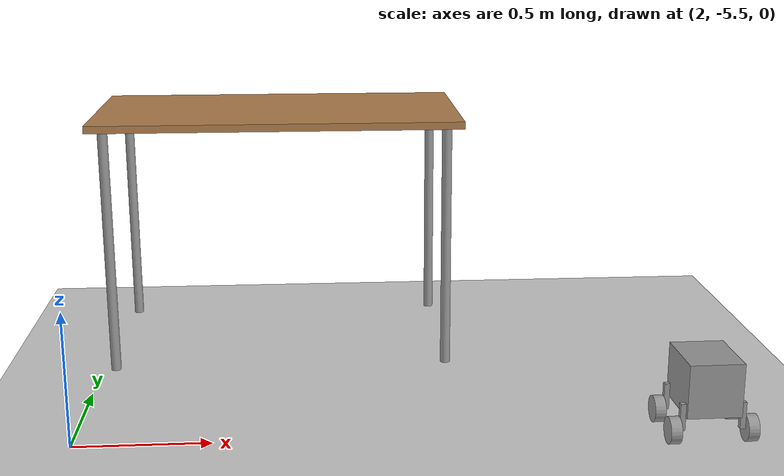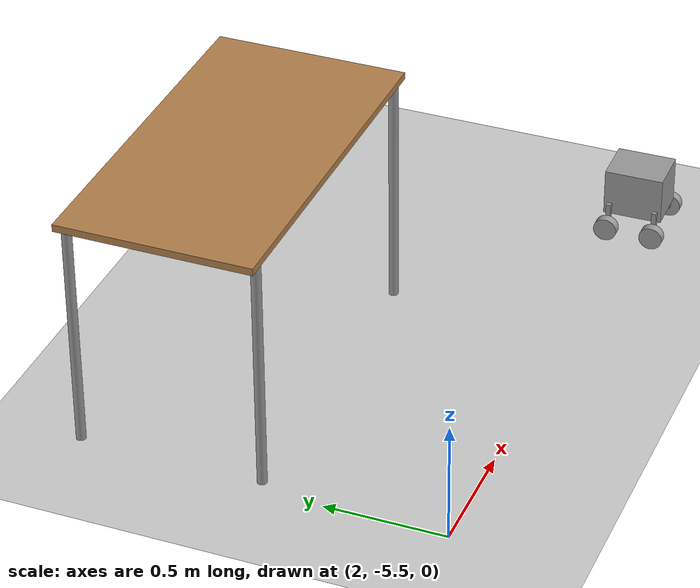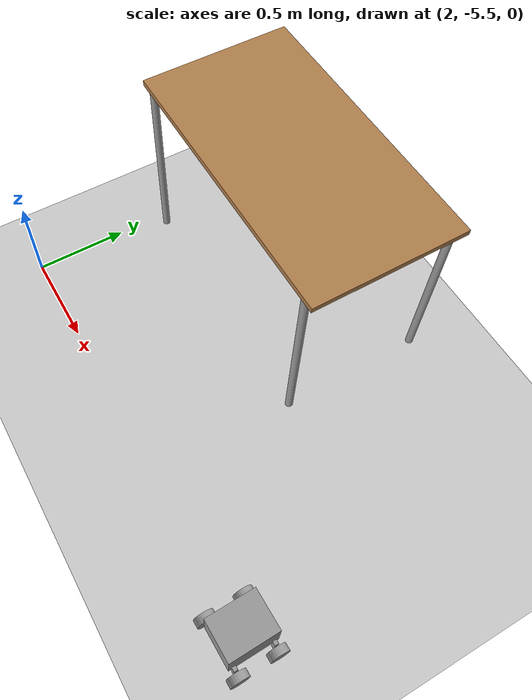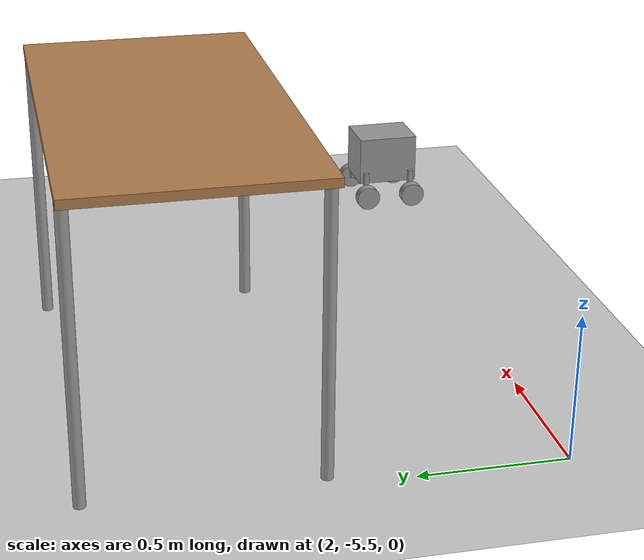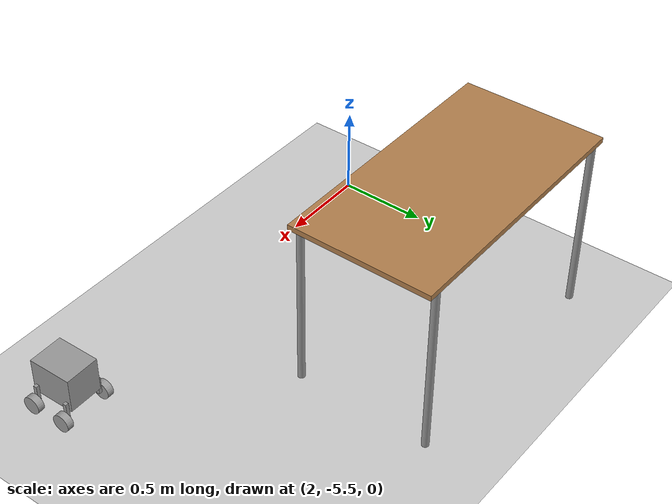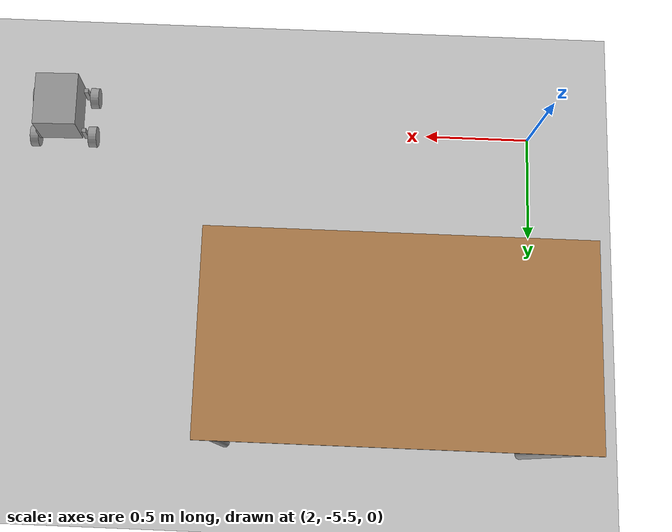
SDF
<sdf version="1.6">
 <world name="default">
  <model name="ground_plane">
   <static>1</static>
   <link name="link">
    <collision name="collision">
     <geometry><plane><normal>0 0 1</normal><size>100 100</size></plane></geometry>
     <surface><friction><ode><mu>100</mu><mu2>50</mu2></ode></friction></surface>
    </collision>
    <visual name="visual">
     <cast_shadows>0</cast_shadows>
     <geometry><plane><normal>0 0 1</normal><size>100 100</size></plane></geometry>
     <material>
      <script><uri>file://media/materials/scripts/gazebo.material</uri><name>Gazebo/Grey</name></script>
     </material>
    </visual>
   </link>
  </model>
  <model name="4wheel">
   <link name="link_0">
    <pose>0.111214 0.119998 0.131111 0 -0 0</pose>
    <inertial>
     <mass>1</mass>
     <inertia>
      <ixx>0.166667</ixx>
      <ixy>0</ixy>
      <ixz>0</ixz>
      <iyy>0.166667</iyy>
      <iyz>0</iyz>
      <izz>0.166667</izz>
     </inertia>
    </inertial>
    <visual name="visual">
     <geometry><box><size>0.02 0.02 0.1</size></box></geometry>
     <material>
      <lighting>1</lighting>
      <script><uri>file://media/materials/scripts/gazebo.material</uri><name>Gazebo/Grey</name></script>
      <shader type="pixel"><normal_map>__default__</normal_map></shader>
      <ambient>0.3 0.3 0.3 1</ambient>
      <diffuse>0.7 0.7 0.7 1</diffuse>
      <specular>0.01 0.01 0.01 1</specular>
      <emissive>0 0 0 1</emissive>
     </material>
    </visual>
    <collision name="collision">
     <geometry><box><size>0.02 0.02 0.1</size></box></geometry>
     <surface>
      <friction>
       <ode><mu>1</mu><mu2>1</mu2><fdir1>0 0 0</fdir1><slip1>0</slip1><slip2>0</slip2></ode>
       <torsional>
        <coefficient>1</coefficient>
        <patch_radius>0</patch_radius>
        <surface_radius>0</surface_radius>
        <use_patch_radius>1</use_patch_radius>
        <ode><slip>0</slip></ode>
       </torsional>
      </friction>
      <bounce><restitution_coefficient>0</restitution_coefficient><threshold>1e+06</threshold></bounce>
      <contact>
       <collide_without_contact>0</collide_without_contact>
       <collide_without_contact_bitmask>1</collide_without_contact_bitmask>
       <collide_bitmask>1</collide_bitmask>
       <ode>
        <soft_cfm>0</soft_cfm>
        <soft_erp>0.2</soft_erp>
        <kp>1e+13</kp>
        <kd>1</kd>
        <max_vel>0.01</max_vel>
        <min_depth>0</min_depth>
       </ode>
       <bullet>
        <split_impulse>1</split_impulse>
        <split_impulse_penetration_threshold>-0.01</split_impulse_penetration_threshold>
        <soft_cfm>0</soft_cfm>
        <soft_erp>0.2</soft_erp>
        <kp>1e+13</kp>
        <kd>1</kd>
       </bullet>
      </contact>
     </surface>
    </collision>
   </link>
   <link name="link_0_clone">
    <pose>0.111214 -0.080002 0.131111 0 -0 0</pose>
    <inertial>
     <mass>1</mass>
     <inertia>
      <ixx>0.166667</ixx>
      <ixy>0</ixy>
      <ixz>0</ixz>
      <iyy>0.166667</iyy>
      <iyz>0</iyz>
      <izz>0.166667</izz>
     </inertia>
     <pose>0.1 -0.1 0.1 0 -0 0</pose>
    </inertial>
    <visual name="visual">
     <geometry><box><size>0.02 0.02 0.1</size></box></geometry>
     <material>
      <lighting>1</lighting>
      <script><uri>file://media/materials/scripts/gazebo.material</uri><name>Gazebo/Grey</name></script>
      <shader type="pixel"><normal_map>__default__</normal_map></shader>
      <ambient>0.3 0.3 0.3 1</ambient>
      <diffuse>0.7 0.7 0.7 1</diffuse>
      <specular>0.01 0.01 0.01 1</specular>
      <emissive>0 0 0 1</emissive>
     </material>
    </visual>
    <collision name="collision">
     <geometry><box><size>0.02 0.02 0.1</size></box></geometry>
     <surface>
      <friction>
       <ode><mu>1</mu><mu2>1</mu2><fdir1>0 0 0</fdir1><slip1>0</slip1><slip2>0</slip2></ode>
       <torsional>
        <coefficient>1</coefficient>
        <patch_radius>0</patch_radius>
        <surface_radius>0</surface_radius>
        <use_patch_radius>1</use_patch_radius>
        <ode><slip>0</slip></ode>
       </torsional>
      </friction>
      <bounce><restitution_coefficient>0</restitution_coefficient><threshold>1e+06</threshold></bounce>
      <contact>
       <collide_without_contact>0</collide_without_contact>
       <collide_without_contact_bitmask>1</collide_without_contact_bitmask>
       <collide_bitmask>1</collide_bitmask>
       <ode>
        <soft_cfm>0</soft_cfm>
        <soft_erp>0.2</soft_erp>
        <kp>1e+13</kp>
        <kd>1</kd>
        <max_vel>0.01</max_vel>
        <min_depth>0</min_depth>
       </ode>
       <bullet>
        <split_impulse>1</split_impulse>
        <split_impulse_penetration_threshold>-0.01</split_impulse_penetration_threshold>
        <soft_cfm>0</soft_cfm>
        <soft_erp>0.2</soft_erp>
        <kp>1e+13</kp>
        <kd>1</kd>
       </bullet>
      </contact>
     </surface>
    </collision>
   </link>
   <link name="link_0_clone_0">
    <pose>-0.108786 0.119998 0.131111 0 -0 0</pose>
    <inertial>
     <mass>1</mass>
     <inertia>
      <ixx>0.166667</ixx>
      <ixy>0</ixy>
      <ixz>0</ixz>
      <iyy>0.166667</iyy>
      <iyz>0</iyz>
      <izz>0.166667</izz>
     </inertia>
    </inertial>
    <visual name="visual">
     <geometry><box><size>0.02 0.02 0.1</size></box></geometry>
     <material>
      <lighting>1</lighting>
      <script><uri>file://media/materials/scripts/gazebo.material</uri><name>Gazebo/Grey</name></script>
      <shader type="pixel"><normal_map>__default__</normal_map></shader>
      <ambient>0.3 0.3 0.3 1</ambient>
      <diffuse>0.7 0.7 0.7 1</diffuse>
      <specular>0.01 0.01 0.01 1</specular>
      <emissive>0 0 0 1</emissive>
     </material>
    </visual>
    <collision name="collision">
     <geometry><box><size>0.02 0.02 0.1</size></box></geometry>
     <surface>
      <friction>
       <ode><mu>1</mu><mu2>1</mu2><fdir1>0 0 0</fdir1><slip1>0</slip1><slip2>0</slip2></ode>
       <torsional>
        <coefficient>1</coefficient>
        <patch_radius>0</patch_radius>
        <surface_radius>0</surface_radius>
        <use_patch_radius>1</use_patch_radius>
        <ode><slip>0</slip></ode>
       </torsional>
      </friction>
      <bounce><restitution_coefficient>0</restitution_coefficient><threshold>1e+06</threshold></bounce>
      <contact>
       <collide_without_contact>0</collide_without_contact>
       <collide_without_contact_bitmask>1</collide_without_contact_bitmask>
       <collide_bitmask>1</collide_bitmask>
       <ode>
        <soft_cfm>0</soft_cfm>
        <soft_erp>0.2</soft_erp>
        <kp>1e+13</kp>
        <kd>1</kd>
        <max_vel>0.01</max_vel>
        <min_depth>0</min_depth>
       </ode>
       <bullet>
        <split_impulse>1</split_impulse>
        <split_impulse_penetration_threshold>-0.01</split_impulse_penetration_threshold>
        <soft_cfm>0</soft_cfm>
        <soft_erp>0.2</soft_erp>
        <kp>1e+13</kp>
        <kd>1</kd>
       </bullet>
      </contact>
     </surface>
    </collision>
   </link>
   <link name="link_0_clone_1">
    <pose>-0.108786 -0.080002 0.131111 0 -0 0</pose>
    <inertial>
     <mass>1</mass>
     <inertia>
      <ixx>0.166667</ixx>
      <ixy>0</ixy>
      <ixz>0</ixz>
      <iyy>0.166667</iyy>
      <iyz>0</iyz>
      <izz>0.166667</izz>
     </inertia>
    </inertial>
    <visual name="visual">
     <geometry><box><size>0.02 0.02 0.1</size></box></geometry>
     <material>
      <lighting>1</lighting>
      <script><uri>file://media/materials/scripts/gazebo.material</uri><name>Gazebo/Grey</name></script>
      <shader type="pixel"><normal_map>__default__</normal_map></shader>
      <ambient>0.3 0.3 0.3 1</ambient>
      <diffuse>0.7 0.7 0.7 1</diffuse>
      <specular>0.01 0.01 0.01 1</specular>
      <emissive>0 0 0 1</emissive>
     </material>
    </visual>
    <collision name="collision">
     <geometry><box><size>0.02 0.02 0.1</size></box></geometry>
     <surface>
      <friction>
       <ode><mu>1</mu><mu2>1</mu2><fdir1>0 0 0</fdir1><slip1>0</slip1><slip2>0</slip2></ode>
       <torsional>
        <coefficient>1</coefficient>
        <patch_radius>0</patch_radius>
        <surface_radius>0</surface_radius>
        <use_patch_radius>1</use_patch_radius>
        <ode><slip>0</slip></ode>
       </torsional>
      </friction>
      <bounce><restitution_coefficient>0</restitution_coefficient><threshold>1e+06</threshold></bounce>
      <contact>
       <collide_without_contact>0</collide_without_contact>
       <collide_without_contact_bitmask>1</collide_without_contact_bitmask>
       <collide_bitmask>1</collide_bitmask>
       <ode>
        <soft_cfm>0</soft_cfm>
        <soft_erp>0.2</soft_erp>
        <kp>1e+13</kp>
        <kd>1</kd>
        <max_vel>0.01</max_vel>
        <min_depth>0</min_depth>
       </ode>
       <bullet>
        <split_impulse>1</split_impulse>
        <split_impulse_penetration_threshold>-0.01</split_impulse_penetration_threshold>
        <soft_cfm>0</soft_cfm>
        <soft_erp>0.2</soft_erp>
        <kp>1e+13</kp>
        <kd>1</kd>
       </bullet>
      </contact>
     </surface>
    </collision>
   </link>
   <link name="link_1">
    <pose>0.001214 0.019998 0.231111 0 -0 0</pose>
    <inertial>
     <mass>1</mass>
     <inertia>
      <ixx>0.166667</ixx>
      <ixy>0</ixy>
      <ixz>0</ixz>
      <iyy>0.166667</iyy>
      <iyz>0</iyz>
      <izz>0.166667</izz>
     </inertia>
    </inertial>
    <visual name="visual">
     <geometry><box><size>0.2 0.25 0.2</size></box></geometry>
     <material>
      <lighting>1</lighting>
      <script><uri>file://media/materials/scripts/gazebo.material</uri><name>Gazebo/Grey</name></script>
      <shader type="pixel"><normal_map>__default__</normal_map></shader>
      <ambient>0.3 0.3 0.3 1</ambient>
      <diffuse>0.7 0.7 0.7 1</diffuse>
      <specular>0.01 0.01 0.01 1</specular>
      <emissive>0 0 0 1</emissive>
     </material>
    </visual>
    <collision name="collision">
     <geometry><box><size>0.2 0.25 0.2</size></box></geometry>
     <surface>
      <friction>
       <ode><mu>1</mu><mu2>1</mu2><fdir1>0 0 0</fdir1><slip1>0</slip1><slip2>0</slip2></ode>
       <torsional>
        <coefficient>1</coefficient>
        <patch_radius>0</patch_radius>
        <surface_radius>0</surface_radius>
        <use_patch_radius>1</use_patch_radius>
        <ode><slip>0</slip></ode>
       </torsional>
      </friction>
      <bounce><restitution_coefficient>0</restitution_coefficient><threshold>1e+06</threshold></bounce>
      <contact>
       <collide_without_contact>0</collide_without_contact>
       <collide_without_contact_bitmask>1</collide_without_contact_bitmask>
       <collide_bitmask>1</collide_bitmask>
       <ode>
        <soft_cfm>0</soft_cfm>
        <soft_erp>0.2</soft_erp>
        <kp>1e+13</kp>
        <kd>1</kd>
        <max_vel>0.01</max_vel>
        <min_depth>0</min_depth>
       </ode>
       <bullet>
        <split_impulse>1</split_impulse>
        <split_impulse_penetration_threshold>-0.01</split_impulse_penetration_threshold>
        <soft_cfm>0</soft_cfm>
        <soft_erp>0.2</soft_erp>
        <kp>1e+13</kp>
        <kd>1</kd>
       </bullet>
      </contact>
     </surface>
    </collision>
   </link>
   <link name="link_3">
    <pose>0.141214 0.119998 0.081111 1.5707 0 1.5707</pose>
    <inertial>
     <mass>1</mass>
     <inertia><ixx>0.145833</ixx><ixy>0</ixy><ixz>0</ixz><iyy>0.145833</iyy><iyz>0</iyz><izz>0.125</izz></inertia>
    </inertial>
    <visual name="visual">
     <geometry><cylinder><radius>0.05</radius><length>0.04</length></cylinder></geometry>
     <material>
      <lighting>1</lighting>
      <script><uri>file://media/materials/scripts/gazebo.material</uri><name>Gazebo/Grey</name></script>
      <shader type="pixel"><normal_map>__default__</normal_map></shader>
      <ambient>0.3 0.3 0.3 1</ambient>
      <diffuse>0.7 0.7 0.7 1</diffuse>
      <specular>0.01 0.01 0.01 1</specular>
      <emissive>0 0 0 1</emissive>
     </material>
    </visual>
    <collision name="collision">
     <geometry><cylinder><radius>0.05</radius><length>0.04</length></cylinder></geometry>
     <surface>
      <friction>
       <ode><mu>1</mu><mu2>1</mu2><fdir1>0 0 0</fdir1><slip1>0</slip1><slip2>0</slip2></ode>
       <torsional>
        <coefficient>1</coefficient>
        <patch_radius>0</patch_radius>
        <surface_radius>0</surface_radius>
        <use_patch_radius>1</use_patch_radius>
        <ode><slip>0</slip></ode>
       </torsional>
      </friction>
      <bounce><restitution_coefficient>0</restitution_coefficient><threshold>1e+06</threshold></bounce>
      <contact>
       <collide_without_contact>0</collide_without_contact>
       <collide_without_contact_bitmask>1</collide_without_contact_bitmask>
       <collide_bitmask>1</collide_bitmask>
       <ode>
        <soft_cfm>0</soft_cfm>
        <soft_erp>0.2</soft_erp>
        <kp>1e+13</kp>
        <kd>1</kd>
        <max_vel>0.01</max_vel>
        <min_depth>0</min_depth>
       </ode>
       <bullet>
        <split_impulse>1</split_impulse>
        <split_impulse_penetration_threshold>-0.01</split_impulse_penetration_threshold>
        <soft_cfm>0</soft_cfm>
        <soft_erp>0.2</soft_erp>
        <kp>1e+13</kp>
        <kd>1</kd>
       </bullet>
      </contact>
     </surface>
    </collision>
   </link>
   <link name="link_3_clone">
    <pose>0.141223 -0.080002 0.081111 1.5707 0 1.5707</pose>
    <inertial>
     <mass>1</mass>
     <inertia><ixx>0.145833</ixx><ixy>0</ixy><ixz>0</ixz><iyy>0.145833</iyy><iyz>0</iyz><izz>0.125</izz></inertia>
    </inertial>
    <visual name="visual">
     <geometry><cylinder><radius>0.05</radius><length>0.04</length></cylinder></geometry>
     <material>
      <lighting>1</lighting>
      <script><uri>file://media/materials/scripts/gazebo.material</uri><name>Gazebo/Grey</name></script>
      <shader type="pixel"><normal_map>__default__</normal_map></shader>
      <ambient>0.3 0.3 0.3 1</ambient>
      <diffuse>0.7 0.7 0.7 1</diffuse>
      <specular>0.01 0.01 0.01 1</specular>
      <emissive>0 0 0 1</emissive>
     </material>
    </visual>
    <collision name="collision">
     <geometry><cylinder><radius>0.05</radius><length>0.04</length></cylinder></geometry>
     <surface>
      <friction>
       <ode><mu>1</mu><mu2>1</mu2><fdir1>0 0 0</fdir1><slip1>0</slip1><slip2>0</slip2></ode>
       <torsional>
        <coefficient>1</coefficient>
        <patch_radius>0</patch_radius>
        <surface_radius>0</surface_radius>
        <use_patch_radius>1</use_patch_radius>
        <ode><slip>0</slip></ode>
       </torsional>
      </friction>
      <bounce><restitution_coefficient>0</restitution_coefficient><threshold>1e+06</threshold></bounce>
      <contact>
       <collide_without_contact>0</collide_without_contact>
       <collide_without_contact_bitmask>1</collide_without_contact_bitmask>
       <collide_bitmask>1</collide_bitmask>
       <ode>
        <soft_cfm>0</soft_cfm>
        <soft_erp>0.2</soft_erp>
        <kp>1e+13</kp>
        <kd>1</kd>
        <max_vel>0.01</max_vel>
        <min_depth>0</min_depth>
       </ode>
       <bullet>
        <split_impulse>1</split_impulse>
        <split_impulse_penetration_threshold>-0.01</split_impulse_penetration_threshold>
        <soft_cfm>0</soft_cfm>
        <soft_erp>0.2</soft_erp>
        <kp>1e+13</kp>
        <kd>1</kd>
       </bullet>
      </contact>
     </surface>
    </collision>
   </link>
   <link name="link_3_clone_0">
    <pose>-0.138796 0.119998 0.081111 1.5707 0 1.5707</pose>
    <inertial>
     <mass>1</mass>
     <inertia><ixx>0.145833</ixx><ixy>0</ixy><ixz>0</ixz><iyy>0.145833</iyy><iyz>0</iyz><izz>0.125</izz></inertia>
    </inertial>
    <visual name="visual">
     <geometry><cylinder><radius>0.05</radius><length>0.04</length></cylinder></geometry>
     <material>
      <lighting>1</lighting>
      <script><uri>file://media/materials/scripts/gazebo.material</uri><name>Gazebo/Grey</name></script>
      <shader type="pixel"><normal_map>__default__</normal_map></shader>
      <ambient>0.3 0.3 0.3 1</ambient>
      <diffuse>0.7 0.7 0.7 1</diffuse>
      <specular>0.01 0.01 0.01 1</specular>
      <emissive>0 0 0 1</emissive>
     </material>
    </visual>
    <collision name="collision">
     <geometry><cylinder><radius>0.05</radius><length>0.04</length></cylinder></geometry>
     <surface>
      <friction>
       <ode><mu>1</mu><mu2>1</mu2><fdir1>0 0 0</fdir1><slip1>0</slip1><slip2>0</slip2></ode>
       <torsional>
        <coefficient>1</coefficient>
        <patch_radius>0</patch_radius>
        <surface_radius>0</surface_radius>
        <use_patch_radius>1</use_patch_radius>
        <ode><slip>0</slip></ode>
       </torsional>
      </friction>
      <bounce><restitution_coefficient>0</restitution_coefficient><threshold>1e+06</threshold></bounce>
      <contact>
       <collide_without_contact>0</collide_without_contact>
       <collide_without_contact_bitmask>1</collide_without_contact_bitmask>
       <collide_bitmask>1</collide_bitmask>
       <ode>
        <soft_cfm>0</soft_cfm>
        <soft_erp>0.2</soft_erp>
        <kp>1e+13</kp>
        <kd>1</kd>
        <max_vel>0.01</max_vel>
        <min_depth>0</min_depth>
       </ode>
       <bullet>
        <split_impulse>1</split_impulse>
        <split_impulse_penetration_threshold>-0.01</split_impulse_penetration_threshold>
        <soft_cfm>0</soft_cfm>
        <soft_erp>0.2</soft_erp>
        <kp>1e+13</kp>
        <kd>1</kd>
       </bullet>
      </contact>
     </surface>
    </collision>
   </link>
   <link name="link_3_clone_1">
    <pose>-0.138796 -0.080002 0.081111 1.5707 0 1.5707</pose>
    <inertial>
     <mass>1</mass>
     <inertia><ixx>0.145833</ixx><ixy>0</ixy><ixz>0</ixz><iyy>0.145833</iyy><iyz>0</iyz><izz>0.125</izz></inertia>
    </inertial>
    <visual name="visual">
     <geometry><cylinder><radius>0.05</radius><length>0.04</length></cylinder></geometry>
     <material>
      <lighting>1</lighting>
      <script><uri>file://media/materials/scripts/gazebo.material</uri><name>Gazebo/Grey</name></script>
      <shader type="pixel"><normal_map>__default__</normal_map></shader>
      <ambient>0.3 0.3 0.3 1</ambient>
      <diffuse>0.7 0.7 0.7 1</diffuse>
      <specular>0.01 0.01 0.01 1</specular>
      <emissive>0 0 0 1</emissive>
     </material>
    </visual>
    <collision name="collision">
     <geometry><cylinder><radius>0.05</radius><length>0.04</length></cylinder></geometry>
     <surface>
      <friction>
       <ode><mu>1</mu><mu2>1</mu2><fdir1>0 0 0</fdir1><slip1>0</slip1><slip2>0</slip2></ode>
       <torsional>
        <coefficient>1</coefficient>
        <patch_radius>0</patch_radius>
        <surface_radius>0</surface_radius>
        <use_patch_radius>1</use_patch_radius>
        <ode><slip>0</slip></ode>
       </torsional>
      </friction>
      <bounce><restitution_coefficient>0</restitution_coefficient><threshold>1e+06</threshold></bounce>
      <contact>
       <collide_without_contact>0</collide_without_contact>
       <collide_without_contact_bitmask>1</collide_without_contact_bitmask>
       <collide_bitmask>1</collide_bitmask>
       <ode>
        <soft_cfm>0</soft_cfm>
        <soft_erp>0.2</soft_erp>
        <kp>1e+13</kp>
        <kd>1</kd>
        <max_vel>0.01</max_vel>
        <min_depth>0</min_depth>
       </ode>
       <bullet>
        <split_impulse>1</split_impulse>
        <split_impulse_penetration_threshold>-0.01</split_impulse_penetration_threshold>
        <soft_cfm>0</soft_cfm>
        <soft_erp>0.2</soft_erp>
        <kp>1e+13</kp>
        <kd>1</kd>
       </bullet>
      </contact>
     </surface>
    </collision>
   </link>
   <joint name="link_0_JOINT_17" type="fixed">
    <parent>link_0</parent>
    <child>link_3</child>
    <physics>
     <ode><limit><cfm>0</cfm><erp>0.2</erp></limit><suspension><cfm>0</cfm><erp>0.2</erp></suspension></ode>
    </physics>
   </joint>
   <joint name="link_0_clone_0_JOINT_16" type="fixed">
    <parent>link_0_clone_0</parent>
    <child>link_3_clone_0</child>
    <physics>
     <ode><limit><cfm>0</cfm><erp>0.2</erp></limit><suspension><cfm>0</cfm><erp>0.2</erp></suspension></ode>
    </physics>
   </joint>
   <joint name="link_0_clone_1_JOINT_15" type="fixed">
    <parent>link_0_clone_1</parent>
    <child>link_3_clone_1</child>
    <physics>
     <ode><limit><cfm>0</cfm><erp>0.2</erp></limit><suspension><cfm>0</cfm><erp>0.2</erp></suspension></ode>
    </physics>
   </joint>
   <joint name="link_0_clone_JOINT_11" type="revolute">
    <parent>link_0_clone</parent>
    <child>link_3_clone</child>
    <axis>
     <xyz>1 0 0</xyz>
     <use_parent_model_frame>0</use_parent_model_frame>
     <limit>
      <lower>-1.79769e+308</lower>
      <upper>1.79769e+308</upper>
      <effort>-1</effort>
      <velocity>-1</velocity>
     </limit>
     <dynamics>
      <spring_reference>0</spring_reference>
      <spring_stiffness>0</spring_stiffness>
      <damping>0</damping>
     </dynamics>
    </axis>
    <physics>
     <ode><limit><cfm>0</cfm><erp>0.2</erp></limit><suspension><cfm>0</cfm><erp>0.2</erp></suspension></ode>
    </physics>
   </joint>
   <joint name="link_1_JOINT_5" type="fixed">
    <parent>link_1</parent>
    <child>link_0_clone_0</child>
    <physics>
     <ode><limit><cfm>0</cfm><erp>0.2</erp></limit><suspension><cfm>0</cfm><erp>0.2</erp></suspension></ode>
    </physics>
   </joint>
   <joint name="link_1_JOINT_6" type="fixed">
    <parent>link_1</parent>
    <child>link_0_clone_1</child>
    <physics>
     <ode><limit><cfm>0</cfm><erp>0.2</erp></limit><suspension><cfm>0</cfm><erp>0.2</erp></suspension></ode>
    </physics>
   </joint>
   <joint name="link_1_JOINT_7" type="fixed">
    <parent>link_1</parent>
    <child>link_0_clone</child>
    <physics>
     <ode><limit><cfm>0</cfm><erp>0.2</erp></limit><suspension><cfm>0</cfm><erp>0.2</erp></suspension></ode>
    </physics>
   </joint>
   <joint name="link_1_JOINT_8" type="fixed">
    <parent>link_1</parent>
    <child>link_0</child>
    <physics>
     <ode><limit><cfm>0</cfm><erp>0.2</erp></limit><suspension><cfm>0</cfm><erp>0.2</erp></suspension></ode>
    </physics>
   </joint>
   <static>0</static>
   <pose>4.27269 -5.53213 -0.031111 3e-06 -7e-06 0.016531</pose>
  </model>
  <model name="table">
   <static>1</static>
   <link name="link">
    <collision name="surface">
     <pose>0 0 1 0 -0 0</pose>
     <geometry><box><size>1.5 0.8 0.03</size></box></geometry>
     <surface><friction><ode><mu>0.6</mu><mu2>0.6</mu2></ode></friction></surface>
    </collision>
    <visual name="visual1">
     <pose>0 0 1 0 -0 0</pose>
     <geometry><box><size>1.5 0.8 0.03</size></box></geometry>
     <material>
      <script><uri>file://media/materials/scripts/gazebo.material</uri><name>Gazebo/Wood</name></script>
     </material>
    </visual>
    <collision name="front_left_leg">
     <pose>0.68 0.38 0.5 0 -0 0</pose>
     <geometry><cylinder><radius>0.02</radius><length>1</length></cylinder></geometry>
    </collision>
    <visual name="front_left_leg">
     <pose>0.68 0.38 0.5 0 -0 0</pose>
     <geometry><cylinder><radius>0.02</radius><length>1</length></cylinder></geometry>
     <material>
      <script><uri>file://media/materials/scripts/gazebo.material</uri><name>Gazebo/Grey</name></script>
     </material>
    </visual>
    <collision name="front_right_leg">
     <pose>0.68 -0.38 0.5 0 -0 0</pose>
     <geometry><cylinder><radius>0.02</radius><length>1</length></cylinder></geometry>
    </collision>
    <visual name="front_right_leg">
     <pose>0.68 -0.38 0.5 0 -0 0</pose>
     <geometry><cylinder><radius>0.02</radius><length>1</length></cylinder></geometry>
     <material>
      <script><uri>file://media/materials/scripts/gazebo.material</uri><name>Gazebo/Grey</name></script>
     </material>
    </visual>
    <collision name="back_right_leg">
     <pose>-0.68 -0.38 0.5 0 -0 0</pose>
     <geometry><cylinder><radius>0.02</radius><length>1</length></cylinder></geometry>
    </collision>
    <visual name="back_right_leg">
     <pose>-0.68 -0.38 0.5 0 -0 0</pose>
     <geometry><cylinder><radius>0.02</radius><length>1</length></cylinder></geometry>
     <material>
      <script><uri>file://media/materials/scripts/gazebo.material</uri><name>Gazebo/Grey</name></script>
     </material>
    </visual>
    <collision name="back_left_leg">
     <pose>-0.68 0.38 0.5 0 -0 0</pose>
     <geometry><cylinder><radius>0.02</radius><length>1</length></cylinder></geometry>
    </collision>
    <visual name="back_left_leg">
     <pose>-0.68 0.38 0.5 0 -0 0</pose>
     <geometry><cylinder><radius>0.02</radius><length>1</length></cylinder></geometry>
     <material>
      <script><uri>file://media/materials/scripts/gazebo.material</uri><name>Gazebo/Grey</name></script>
     </material>
    </visual>
   </link>
   <pose>2.73393 -4.34934 0 0 -0 0</pose>
  </model>
 </world>
</sdf>
